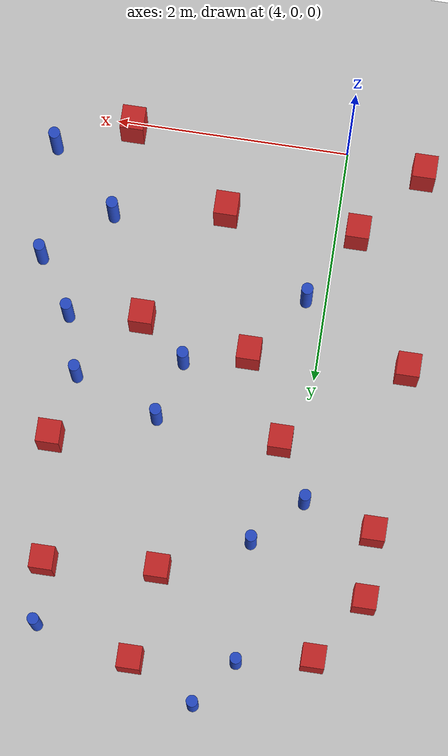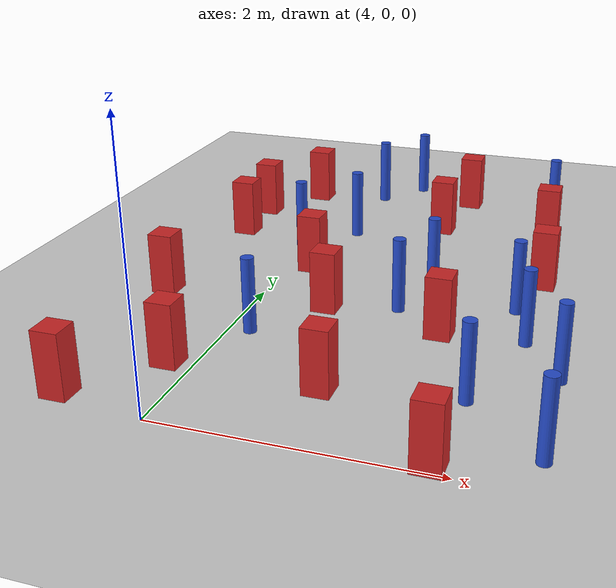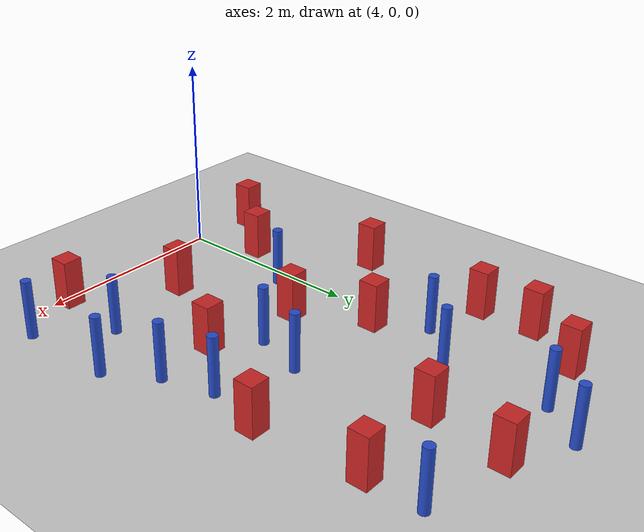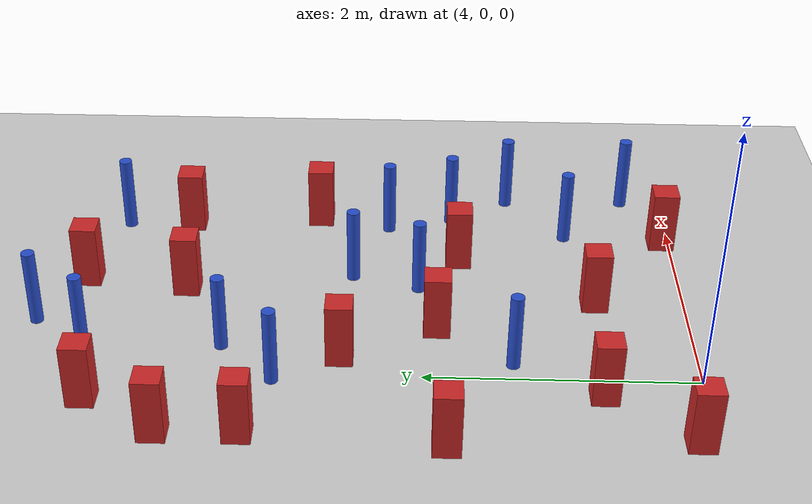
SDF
<sdf version="1.6">
 <world name="default">
  <model name="ground_plane">
   <static>1</static>
   <link name="link">
    <collision name="collision">
     <geometry><plane><normal>0 0 1</normal><size>100 100</size></plane></geometry>
     <surface><friction><ode><mu>100</mu><mu2>50</mu2></ode></friction></surface>
    </collision>
    <visual name="visual">
     <cast_shadows>0</cast_shadows>
     <geometry><plane><normal>0 0 1</normal><size>100 100</size></plane></geometry>
     <material>
      <ambient>1.0 1.0 1.0 1.0</ambient>
      <diffuse>0.8 0.8 0.8 1.0</diffuse>
      <specular>0.01 0.01 0.01 1.000000</specular>
     </material>
    </visual>
   </link>
  </model>
  <model name="square_post_obstacle2">
   <static>true</static>
   <pose>5.52280891063 1.71290231488 -6.11067671241e-07 -5.50515727128e-06 -8.79689657224e-07 2.37013304536e-05</pose>
   <link name="link">
    <pose>0 0 0.25 0 -0 0</pose>
    <inertial>
     <mass>100</mass>
     <inertia>
      <ixx>0.166667</ixx>
      <ixy>0</ixy>
      <ixz>0</ixz>
      <iyy>0.166667</iyy>
      <iyz>0</iyz>
      <izz>0.166667</izz>
     </inertia>
    </inertial>
    <collision name="collision"><geometry><box><size>.2 .2 .5</size></box></geometry></collision>
    <visual name="visual">
     <geometry><box><size>.2 .2 .5</size></box></geometry>
     <material>
      <script><name>Gazebo/Red</name><uri>file://media/materials/scripts/gazebo.material</uri></script>
     </material>
    </visual>
   </link>
  </model>
  <model name="square_post_obstacle6">
   <static>true</static>
   <pose>4.57847857241 1.88806926313 -6.11067671241e-07 -5.50515727128e-06 -8.79689657224e-07 2.37013304536e-05</pose>
   <link name="link">
    <pose>0 0 0.25 0 -0 0</pose>
    <inertial>
     <mass>100</mass>
     <inertia>
      <ixx>0.166667</ixx>
      <ixy>0</ixy>
      <ixz>0</ixz>
      <iyy>0.166667</iyy>
      <iyz>0</iyz>
      <izz>0.166667</izz>
     </inertia>
    </inertial>
    <collision name="collision"><geometry><box><size>.2 .2 .5</size></box></geometry></collision>
    <visual name="visual">
     <geometry><box><size>.2 .2 .5</size></box></geometry>
     <material>
      <script><name>Gazebo/Red</name><uri>file://media/materials/scripts/gazebo.material</uri></script>
     </material>
    </visual>
   </link>
  </model>
  <model name="pole_obstacle12">
   <static>true</static>
   <pose>4.16618906073 1.33775884819 -9.47619616065e-06 5.49618799738e-07 2.36310414071e-07 -1.55090534796e-07</pose>
   <link name="link">
    <pose>0 0 0.3 0 -0 0</pose>
    <inertial>
     <mass>1</mass>
     <inertia><ixx>0.145833</ixx><ixy>0</ixy><ixz>0</ixz><iyy>0.145833</iyy><iyz>0</iyz><izz>0.125</izz></inertia>
    </inertial>
    <collision name="collision">
     <geometry><cylinder><radius>0.05</radius><length>.6</length></cylinder></geometry>
    </collision>
    <visual name="visual">
     <geometry><cylinder><radius>0.05</radius><length>.6</length></cylinder></geometry>
     <material>
      <script><name>Gazebo/Blue</name><uri>file://media/materials/scripts/gazebo.material</uri></script>
     </material>
    </visual>
   </link>
  </model>
  <model name="square_post_obstacle10">
   <static>true</static>
   <pose>4.94972560376 0.686517332191 -6.11067671241e-07 -5.50515727128e-06 -8.79689657224e-07 2.37013304536e-05</pose>
   <link name="link">
    <pose>0 0 0.25 0 -0 0</pose>
    <inertial>
     <mass>100</mass>
     <inertia>
      <ixx>0.166667</ixx>
      <ixy>0</ixy>
      <ixz>0</ixz>
      <iyy>0.166667</iyy>
      <iyz>0</iyz>
      <izz>0.166667</izz>
     </inertia>
    </inertial>
    <collision name="collision"><geometry><box><size>.2 .2 .5</size></box></geometry></collision>
    <visual name="visual">
     <geometry><box><size>.2 .2 .5</size></box></geometry>
     <material>
      <script><name>Gazebo/Red</name><uri>file://media/materials/scripts/gazebo.material</uri></script>
     </material>
    </visual>
   </link>
  </model>
  <model name="square_post_obstacle14">
   <static>true</static>
   <pose>3.31326973187 3.81907040545 -6.11067671241e-07 -5.50515727128e-06 -8.79689657224e-07 2.37013304536e-05</pose>
   <link name="link">
    <pose>0 0 0.25 0 -0 0</pose>
    <inertial>
     <mass>100</mass>
     <inertia>
      <ixx>0.166667</ixx>
      <ixy>0</ixy>
      <ixz>0</ixz>
      <iyy>0.166667</iyy>
      <iyz>0</iyz>
      <izz>0.166667</izz>
     </inertia>
    </inertial>
    <collision name="collision"><geometry><box><size>.2 .2 .5</size></box></geometry></collision>
    <visual name="visual">
     <geometry><box><size>.2 .2 .5</size></box></geometry>
     <material>
      <script><name>Gazebo/Red</name><uri>file://media/materials/scripts/gazebo.material</uri></script>
     </material>
    </visual>
   </link>
  </model>
  <model name="pole_obstacle25">
   <static>true</static>
   <pose>4.6078065156 4.8956471403 -9.47619616065e-06 5.49618799737e-07 2.36310414037e-07 -1.55090534814e-07</pose>
   <link name="link">
    <pose>0 0 0.3 0 -0 0</pose>
    <inertial>
     <mass>1</mass>
     <inertia><ixx>0.145833</ixx><ixy>0</ixy><ixz>0</ixz><iyy>0.145833</iyy><iyz>0</iyz><izz>0.125</izz></inertia>
    </inertial>
    <collision name="collision">
     <geometry><cylinder><radius>0.05</radius><length>.6</length></cylinder></geometry>
    </collision>
    <visual name="visual">
     <geometry><cylinder><radius>0.05</radius><length>.6</length></cylinder></geometry>
     <material>
      <script><name>Gazebo/Blue</name><uri>file://media/materials/scripts/gazebo.material</uri></script>
     </material>
    </visual>
   </link>
  </model>
  <model name="pole_obstacle29">
   <static>true</static>
   <pose>6.00303439838 2.27075554235 -9.47619616065e-06 5.49618799738e-07 2.36310414051e-07 -1.55090534805e-07</pose>
   <link name="link">
    <pose>0 0 0.3 0 -0 0</pose>
    <inertial>
     <mass>1</mass>
     <inertia><ixx>0.145833</ixx><ixy>0</ixy><ixz>0</ixz><iyy>0.145833</iyy><iyz>0</iyz><izz>0.125</izz></inertia>
    </inertial>
    <collision name="collision">
     <geometry><cylinder><radius>0.05</radius><length>.6</length></cylinder></geometry>
    </collision>
    <visual name="visual">
     <geometry><cylinder><radius>0.05</radius><length>.6</length></cylinder></geometry>
     <material>
      <script><name>Gazebo/Blue</name><uri>file://media/materials/scripts/gazebo.material</uri></script>
     </material>
    </visual>
   </link>
  </model>
  <model name="square_post_obstacle25">
   <static>true</static>
   <pose>3.32940242648 0.122497404936 -6.11067671241e-07 -5.50515727128e-06 -8.79689657224e-07 2.37013304536e-05</pose>
   <link name="link">
    <pose>0 0 0.25 0 -0 0</pose>
    <inertial>
     <mass>100</mass>
     <inertia>
      <ixx>0.166667</ixx>
      <ixy>0</ixy>
      <ixz>0</ixz>
      <iyy>0.166667</iyy>
      <iyz>0</iyz>
      <izz>0.166667</izz>
     </inertia>
    </inertial>
    <collision name="collision"><geometry><box><size>.2 .2 .5</size></box></geometry></collision>
    <visual name="visual">
     <geometry><box><size>.2 .2 .5</size></box></geometry>
     <material>
      <script><name>Gazebo/Red</name><uri>file://media/materials/scripts/gazebo.material</uri></script>
     </material>
    </visual>
   </link>
  </model>
  <model name="pole_obstacle37">
   <static>true</static>
   <pose>3.93217232903 3.06755185462 -9.47619616065e-06 5.49618799737e-07 2.36310414051e-07 -1.55090534807e-07</pose>
   <link name="link">
    <pose>0 0 0.3 0 -0 0</pose>
    <inertial>
     <mass>1</mass>
     <inertia><ixx>0.145833</ixx><ixy>0</ixy><ixz>0</ixz><iyy>0.145833</iyy><iyz>0</iyz><izz>0.125</izz></inertia>
    </inertial>
    <collision name="collision">
     <geometry><cylinder><radius>0.05</radius><length>.6</length></cylinder></geometry>
    </collision>
    <visual name="visual">
     <geometry><cylinder><radius>0.05</radius><length>.6</length></cylinder></geometry>
     <material>
      <script><name>Gazebo/Blue</name><uri>file://media/materials/scripts/gazebo.material</uri></script>
     </material>
    </visual>
   </link>
  </model>
  <model name="pole_obstacle55">
   <static>true</static>
   <pose>6.15128745804 1.7640430691 -9.47619616065e-06 5.49618799738e-07 2.36310414071e-07 -1.55090534796e-07</pose>
   <link name="link">
    <pose>0 0 0.3 0 -0 0</pose>
    <inertial>
     <mass>1</mass>
     <inertia><ixx>0.145833</ixx><ixy>0</ixy><ixz>0</ixz><iyy>0.145833</iyy><iyz>0</iyz><izz>0.125</izz></inertia>
    </inertial>
    <collision name="collision">
     <geometry><cylinder><radius>0.05</radius><length>.6</length></cylinder></geometry>
    </collision>
    <visual name="visual">
     <geometry><cylinder><radius>0.05</radius><length>.6</length></cylinder></geometry>
     <material>
      <script><name>Gazebo/Blue</name><uri>file://media/materials/scripts/gazebo.material</uri></script>
     </material>
    </visual>
   </link>
  </model>
  <model name="pole_obstacle60">
   <static>true</static>
   <pose>5.90443320315 0.844762648818 -9.47619616065e-06 5.49618799737e-07 2.36310414061e-07 -1.550905348e-07</pose>
   <link name="link">
    <pose>0 0 0.3 0 -0 0</pose>
    <inertial>
     <mass>1</mass>
     <inertia><ixx>0.145833</ixx><ixy>0</ixy><ixz>0</ixz><iyy>0.145833</iyy><iyz>0</iyz><izz>0.125</izz></inertia>
    </inertial>
    <collision name="collision">
     <geometry><cylinder><radius>0.05</radius><length>.6</length></cylinder></geometry>
    </collision>
    <visual name="visual">
     <geometry><cylinder><radius>0.05</radius><length>.6</length></cylinder></geometry>
     <material>
      <script><name>Gazebo/Blue</name><uri>file://media/materials/scripts/gazebo.material</uri></script>
     </material>
    </visual>
   </link>
  </model>
  <model name="square_post_obstacle53">
   <static>true</static>
   <pose>5.0681535336 3.81489389808 -6.11067671241e-07 -5.50515727128e-06 -8.79689657224e-07 2.37013304536e-05</pose>
   <link name="link">
    <pose>0 0 0.25 0 -0 0</pose>
    <inertial>
     <mass>100</mass>
     <inertia>
      <ixx>0.166667</ixx>
      <ixy>0</ixy>
      <ixz>0</ixz>
      <iyy>0.166667</iyy>
      <iyz>0</iyz>
      <izz>0.166667</izz>
     </inertia>
    </inertial>
    <collision name="collision"><geometry><box><size>.2 .2 .5</size></box></geometry></collision>
    <visual name="visual">
     <geometry><box><size>.2 .2 .5</size></box></geometry>
     <material>
      <script><name>Gazebo/Red</name><uri>file://media/materials/scripts/gazebo.material</uri></script>
     </material>
    </visual>
   </link>
  </model>
  <model name="square_post_obstacle64">
   <static>true</static>
   <pose>3.22979009191 1.82933681918 -6.11067671241e-07 -5.50515727128e-06 -8.79689657224e-07 2.37013304536e-05</pose>
   <link name="link">
    <pose>0 0 0.25 0 -0 0</pose>
    <inertial>
     <mass>100</mass>
     <inertia>
      <ixx>0.166667</ixx>
      <ixy>0</ixy>
      <ixz>0</ixz>
      <iyy>0.166667</iyy>
      <iyz>0</iyz>
      <izz>0.166667</izz>
     </inertia>
    </inertial>
    <collision name="collision"><geometry><box><size>.2 .2 .5</size></box></geometry></collision>
    <visual name="visual">
     <geometry><box><size>.2 .2 .5</size></box></geometry>
     <material>
      <script><name>Gazebo/Red</name><uri>file://media/materials/scripts/gazebo.material</uri></script>
     </material>
    </visual>
   </link>
  </model>
  <model name="square_post_obstacle70">
   <static>true</static>
   <pose>6.13473039082 2.83560361172 -6.11067671241e-07 -5.50515727128e-06 -8.79689657224e-07 2.37013304536e-05</pose>
   <link name="link">
    <pose>0 0 0.25 0 -0 0</pose>
    <inertial>
     <mass>100</mass>
     <inertia>
      <ixx>0.166667</ixx>
      <ixy>0</ixy>
      <ixz>0</ixz>
      <iyy>0.166667</iyy>
      <iyz>0</iyz>
      <izz>0.166667</izz>
     </inertia>
    </inertial>
    <collision name="collision"><geometry><box><size>.2 .2 .5</size></box></geometry></collision>
    <visual name="visual">
     <geometry><box><size>.2 .2 .5</size></box></geometry>
     <material>
      <script><name>Gazebo/Red</name><uri>file://media/materials/scripts/gazebo.material</uri></script>
     </material>
    </visual>
   </link>
  </model>
  <model name="pole_obstacle100">
   <static>true</static>
   <pose>5.12226448424 2.02600975388 -9.47619616065e-06 5.49618799737e-07 2.36310414065e-07 -1.55090534797e-07</pose>
   <link name="link">
    <pose>0 0 0.3 0 -0 0</pose>
    <inertial>
     <mass>1</mass>
     <inertia><ixx>0.145833</ixx><ixy>0</ixy><ixz>0</ixz><iyy>0.145833</iyy><iyz>0</iyz><izz>0.125</izz></inertia>
    </inertial>
    <collision name="collision">
     <geometry><cylinder><radius>0.05</radius><length>.6</length></cylinder></geometry>
    </collision>
    <visual name="visual">
     <geometry><cylinder><radius>0.05</radius><length>.6</length></cylinder></geometry>
     <material>
      <script><name>Gazebo/Blue</name><uri>file://media/materials/scripts/gazebo.material</uri></script>
     </material>
    </visual>
   </link>
  </model>
  <model name="square_post_obstacle99">
   <static>true</static>
   <pose>3.66890360001 4.37015088779 -6.11067671241e-07 -5.50515727128e-06 -8.79689657224e-07 2.37013304536e-05</pose>
   <link name="link">
    <pose>0 0 0.25 0 -0 0</pose>
    <inertial>
     <mass>100</mass>
     <inertia>
      <ixx>0.166667</ixx>
      <ixy>0</ixy>
      <ixz>0</ixz>
      <iyy>0.166667</iyy>
      <iyz>0</iyz>
      <izz>0.166667</izz>
     </inertia>
    </inertial>
    <collision name="collision"><geometry><box><size>.2 .2 .5</size></box></geometry></collision>
    <visual name="visual">
     <geometry><box><size>.2 .2 .5</size></box></geometry>
     <material>
      <script><name>Gazebo/Red</name><uri>file://media/materials/scripts/gazebo.material</uri></script>
     </material>
    </visual>
   </link>
  </model>
  <model name="square_post_obstacle103">
   <static>true</static>
   <pose>5.84700382987 0.0680048802211 -6.11067671241e-07 -5.50515727128e-06 -8.79689657224e-07 2.37013304536e-05</pose>
   <link name="link">
    <pose>0 0 0.25 0 -0 0</pose>
    <inertial>
     <mass>100</mass>
     <inertia>
      <ixx>0.166667</ixx>
      <ixy>0</ixy>
      <ixz>0</ixz>
      <iyy>0.166667</iyy>
      <iyz>0</iyz>
      <izz>0.166667</izz>
     </inertia>
    </inertial>
    <collision name="collision"><geometry><box><size>.2 .2 .5</size></box></geometry></collision>
    <visual name="visual">
     <geometry><box><size>.2 .2 .5</size></box></geometry>
     <material>
      <script><name>Gazebo/Red</name><uri>file://media/materials/scripts/gazebo.material</uri></script>
     </material>
    </visual>
   </link>
  </model>
  <model name="pole_obstacle112">
   <static>true</static>
   <pose>6.00812990225 4.41678415457 -9.47619616065e-06 5.49618799737e-07 2.36310414037e-07 -1.55090534814e-07</pose>
   <link name="link">
    <pose>0 0 0.3 0 -0 0</pose>
    <inertial>
     <mass>1</mass>
     <inertia><ixx>0.145833</ixx><ixy>0</ixy><ixz>0</ixz><iyy>0.145833</iyy><iyz>0</iyz><izz>0.125</izz></inertia>
    </inertial>
    <collision name="collision">
     <geometry><cylinder><radius>0.05</radius><length>.6</length></cylinder></geometry>
    </collision>
    <visual name="visual">
     <geometry><cylinder><radius>0.05</radius><length>.6</length></cylinder></geometry>
     <material>
      <script><name>Gazebo/Blue</name><uri>file://media/materials/scripts/gazebo.material</uri></script>
     </material>
    </visual>
   </link>
  </model>
  <model name="pole_obstacle116">
   <static>true</static>
   <pose>5.27422695581 2.53669862791 -9.47619616065e-06 5.49618799738e-07 2.36310414051e-07 -1.55090534805e-07</pose>
   <link name="link">
    <pose>0 0 0.3 0 -0 0</pose>
    <inertial>
     <mass>1</mass>
     <inertia><ixx>0.145833</ixx><ixy>0</ixy><ixz>0</ixz><iyy>0.145833</iyy><iyz>0</iyz><izz>0.125</izz></inertia>
    </inertial>
    <collision name="collision">
     <geometry><cylinder><radius>0.05</radius><length>.6</length></cylinder></geometry>
    </collision>
    <visual name="visual">
     <geometry><cylinder><radius>0.05</radius><length>.6</length></cylinder></geometry>
     <material>
      <script><name>Gazebo/Blue</name><uri>file://media/materials/scripts/gazebo.material</uri></script>
     </material>
    </visual>
   </link>
  </model>
  <model name="pole_obstacle119">
   <static>true</static>
   <pose>6.4786173951 0.32260310608 -9.47619616065e-06 5.49618799737e-07 2.36310414057e-07 -1.55090534802e-07</pose>
   <link name="link">
    <pose>0 0 0.3 0 -0 0</pose>
    <inertial>
     <mass>1</mass>
     <inertia><ixx>0.145833</ixx><ixy>0</ixy><ixz>0</ixz><iyy>0.145833</iyy><iyz>0</iyz><izz>0.125</izz></inertia>
    </inertial>
    <collision name="collision">
     <geometry><cylinder><radius>0.05</radius><length>.6</length></cylinder></geometry>
    </collision>
    <visual name="visual">
     <geometry><cylinder><radius>0.05</radius><length>.6</length></cylinder></geometry>
     <material>
      <script><name>Gazebo/Blue</name><uri>file://media/materials/scripts/gazebo.material</uri></script>
     </material>
    </visual>
   </link>
  </model>
  <model name="pole_obstacle140">
   <static>true</static>
   <pose>6.45333046416 1.297415042 -9.47619616065e-06 5.49618799738e-07 2.36310414071e-07 -1.55090534796e-07</pose>
   <link name="link">
    <pose>0 0 0.3 0 -0 0</pose>
    <inertial>
     <mass>1</mass>
     <inertia><ixx>0.145833</ixx><ixy>0</ixy><ixz>0</ixz><iyy>0.145833</iyy><iyz>0</iyz><izz>0.125</izz></inertia>
    </inertial>
    <collision name="collision">
     <geometry><cylinder><radius>0.05</radius><length>.6</length></cylinder></geometry>
    </collision>
    <visual name="visual">
     <geometry><cylinder><radius>0.05</radius><length>.6</length></cylinder></geometry>
     <material>
      <script><name>Gazebo/Blue</name><uri>file://media/materials/scripts/gazebo.material</uri></script>
     </material>
    </visual>
   </link>
  </model>
  <model name="pole_obstacle157">
   <static>true</static>
   <pose>4.30394928928 4.49237670779 -9.47619616065e-06 5.49618799737e-07 2.36310414037e-07 -1.55090534814e-07</pose>
   <link name="link">
    <pose>0 0 0.3 0 -0 0</pose>
    <inertial>
     <mass>1</mass>
     <inertia><ixx>0.145833</ixx><ixy>0</ixy><ixz>0</ixz><iyy>0.145833</iyy><iyz>0</iyz><izz>0.125</izz></inertia>
    </inertial>
    <collision name="collision">
     <geometry><cylinder><radius>0.05</radius><length>.6</length></cylinder></geometry>
    </collision>
    <visual name="visual">
     <geometry><cylinder><radius>0.05</radius><length>.6</length></cylinder></geometry>
     <material>
      <script><name>Gazebo/Blue</name><uri>file://media/materials/scripts/gazebo.material</uri></script>
     </material>
    </visual>
   </link>
  </model>
  <model name="square_post_obstacle165">
   <static>true</static>
   <pose>3.81540600315 0.719061170308 -6.11067671241e-07 -5.50515727128e-06 -8.79689657224e-07 2.37013304536e-05</pose>
   <link name="link">
    <pose>0 0 0.25 0 -0 0</pose>
    <inertial>
     <mass>100</mass>
     <inertia>
      <ixx>0.166667</ixx>
      <ixy>0</ixy>
      <ixz>0</ixz>
      <iyy>0.166667</iyy>
      <iyz>0</iyz>
      <izz>0.166667</izz>
     </inertia>
    </inertial>
    <collision name="collision"><geometry><box><size>.2 .2 .5</size></box></geometry></collision>
    <visual name="visual">
     <geometry><box><size>.2 .2 .5</size></box></geometry>
     <material>
      <script><name>Gazebo/Red</name><uri>file://media/materials/scripts/gazebo.material</uri></script>
     </material>
    </visual>
   </link>
  </model>
  <model name="square_post_obstacle170">
   <static>true</static>
   <pose>5.17890722047 4.60096348195 -6.11067671241e-07 -5.50515727128e-06 -8.79689657224e-07 2.37013304536e-05</pose>
   <link name="link">
    <pose>0 0 0.25 0 -0 0</pose>
    <inertial>
     <mass>100</mass>
     <inertia>
      <ixx>0.166667</ixx>
      <ixy>0</ixy>
      <ixz>0</ixz>
      <iyy>0.166667</iyy>
      <iyz>0</iyz>
      <izz>0.166667</izz>
     </inertia>
    </inertial>
    <collision name="collision"><geometry><box><size>.2 .2 .5</size></box></geometry></collision>
    <visual name="visual">
     <geometry><box><size>.2 .2 .5</size></box></geometry>
     <material>
      <script><name>Gazebo/Red</name><uri>file://media/materials/scripts/gazebo.material</uri></script>
     </material>
    </visual>
   </link>
  </model>
  <model name="square_post_obstacle181">
   <static>true</static>
   <pose>4.20627146506 2.59380501335 -6.11067671241e-07 -5.50515727128e-06 -8.79689657224e-07 2.37013304536e-05</pose>
   <link name="link">
    <pose>0 0 0.25 0 -0 0</pose>
    <inertial>
     <mass>100</mass>
     <inertia>
      <ixx>0.166667</ixx>
      <ixy>0</ixy>
      <ixz>0</ixz>
      <iyy>0.166667</iyy>
      <iyz>0</iyz>
      <izz>0.166667</izz>
     </inertia>
    </inertial>
    <collision name="collision"><geometry><box><size>.2 .2 .5</size></box></geometry></collision>
    <visual name="visual">
     <geometry><box><size>.2 .2 .5</size></box></geometry>
     <material>
      <script><name>Gazebo/Red</name><uri>file://media/materials/scripts/gazebo.material</uri></script>
     </material>
    </visual>
   </link>
  </model>
  <model name="square_post_obstacle186">
   <static>true</static>
   <pose>3.3213020806 3.24358520549 -6.11067671241e-07 -5.50515727128e-06 -8.79689657224e-07 2.37013304536e-05</pose>
   <link name="link">
    <pose>0 0 0.25 0 -0 0</pose>
    <inertial>
     <mass>100</mass>
     <inertia>
      <ixx>0.166667</ixx>
      <ixy>0</ixy>
      <ixz>0</ixz>
      <iyy>0.166667</iyy>
      <iyz>0</iyz>
      <izz>0.166667</izz>
     </inertia>
    </inertial>
    <collision name="collision"><geometry><box><size>.2 .2 .5</size></box></geometry></collision>
    <visual name="visual">
     <geometry><box><size>.2 .2 .5</size></box></geometry>
     <material>
      <script><name>Gazebo/Red</name><uri>file://media/materials/scripts/gazebo.material</uri></script>
     </material>
    </visual>
   </link>
  </model>
  <model name="square_post_obstacle215">
   <static>true</static>
   <pose>6.02490747794 3.88896551757 -6.11067671241e-07 -5.50515727128e-06 -8.79689657224e-07 2.37013304536e-05</pose>
   <link name="link">
    <pose>0 0 0.25 0 -0 0</pose>
    <inertial>
     <mass>100</mass>
     <inertia>
      <ixx>0.166667</ixx>
      <ixy>0</ixy>
      <ixz>0</ixz>
      <iyy>0.166667</iyy>
      <iyz>0</iyz>
      <izz>0.166667</izz>
     </inertia>
    </inertial>
    <collision name="collision"><geometry><box><size>.2 .2 .5</size></box></geometry></collision>
    <visual name="visual">
     <geometry><box><size>.2 .2 .5</size></box></geometry>
     <material>
      <script><name>Gazebo/Red</name><uri>file://media/materials/scripts/gazebo.material</uri></script>
     </material>
    </visual>
   </link>
  </model>
  <model name="pole_obstacle229">
   <static>true</static>
   <pose>4.32798734163 3.47064998095 -9.47619616065e-06 5.49618799738e-07 2.36310414051e-07 -1.55090534805e-07</pose>
   <link name="link">
    <pose>0 0 0.3 0 -0 0</pose>
    <inertial>
     <mass>1</mass>
     <inertia><ixx>0.145833</ixx><ixy>0</ixy><ixz>0</ixz><iyy>0.145833</iyy><iyz>0</iyz><izz>0.125</izz></inertia>
    </inertial>
    <collision name="collision">
     <geometry><cylinder><radius>0.05</radius><length>.6</length></cylinder></geometry>
    </collision>
    <visual name="visual">
     <geometry><cylinder><radius>0.05</radius><length>.6</length></cylinder></geometry>
     <material>
      <script><name>Gazebo/Blue</name><uri>file://media/materials/scripts/gazebo.material</uri></script>
     </material>
    </visual>
   </link>
  </model>
 </world>
</sdf>
